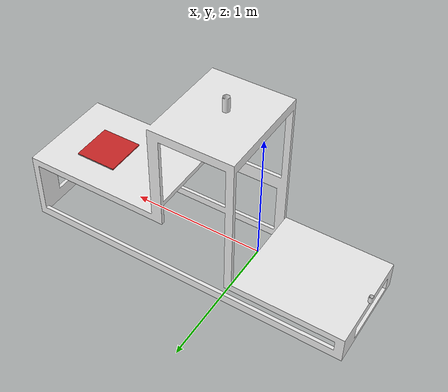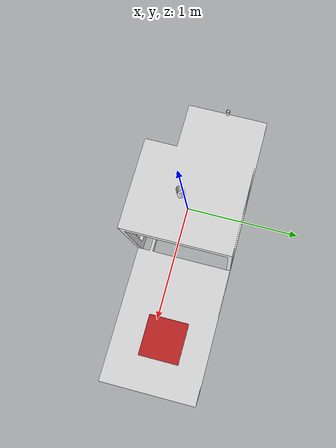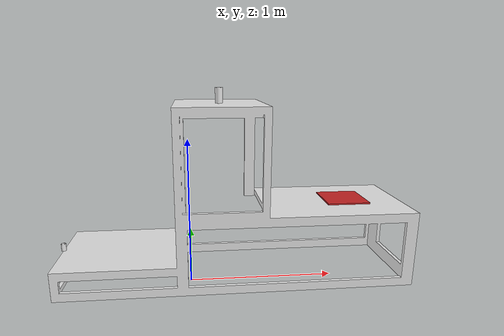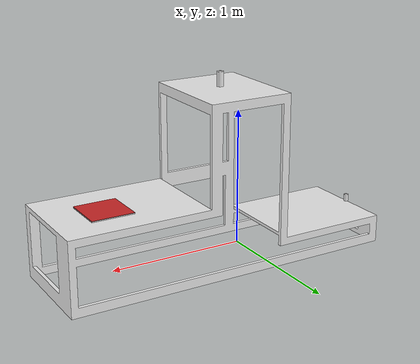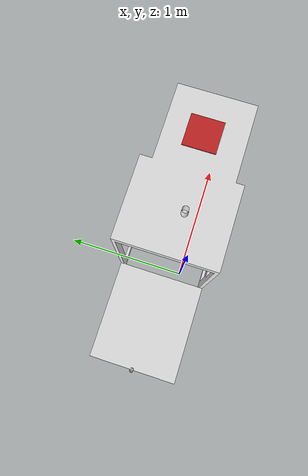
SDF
<?xml version='1.0'?>
<sdf version='1.7'>
  <model name='smart_reefs'>
    <link name='part_1'>
      <inertial>
        <pose>0 0 0 0 -0 0</pose>
        <mass>1e+12</mass>
        <inertia>
          <ixx>4.53417e+10</ixx>
          <ixy>0</ixy>
          <ixz>0</ixz>
          <iyy>5.66667e+10</iyy>
          <iyz>0</iyz>
          <izz>9.53417e+10</izz>
        </inertia>
      </inertial>
      <self_collide>0</self_collide>
      <enable_wind>0</enable_wind>
      <kinematic>0</kinematic>
      <pose>-0.087877 -0.216714 0 0 -0 0</pose>
      <gravity>1</gravity>
      <is_static>1</is_static>
      <frame name='part_1_frame'>
        <pose>0 0 0 0 -0 0</pose>
      </frame>
      <visual name='assembly_visual'>
        <pose>0 0 0 0 -0 0</pose>
        <geometry>
          <mesh>
            <uri>/home/eer/Documents/Software_2024/ROS2/models/smart_reefs/assembly_visual.stl</uri>
            <scale>2 2 2</scale>
          </mesh>
        </geometry>
        <material>
          <shader type='pixel'>
            <normal_map>__default__</normal_map>
          </shader>
          <script>
            <name>Gazebo/White</name>
            <uri>__default__</uri>
          </script>
          <ambient>1 1 1 1</ambient>
          <diffuse>1 1 1 1</diffuse>
          <specular>1 1 1 1</specular>
          <emissive>0 0 0 1</emissive>
        </material>
        <transparency>0</transparency>
        <cast_shadows>1</cast_shadows>
      </visual>
      <collision name='collision_3'>
        <laser_retro>0</laser_retro>
        <max_contacts>10</max_contacts>
        <pose>0.3 0.355 0.615 0 -0 0</pose>
        <geometry>
          <box>
            <size>0.6 0.71 1.195</size>
          </box>
        </geometry>
        <surface>
          <friction>
            <ode>
              <mu>1</mu>
              <mu2>1</mu2>
              <fdir1>0 0 0</fdir1>
              <slip1>0</slip1>
              <slip2>0</slip2>
            </ode>
            <torsional>
              <coefficient>1</coefficient>
              <patch_radius>0</patch_radius>
              <surface_radius>0</surface_radius>
              <use_patch_radius>1</use_patch_radius>
              <ode>
                <slip>0</slip>
              </ode>
            </torsional>
          </friction>
          <bounce>
            <restitution_coefficient>0</restitution_coefficient>
            <threshold>1e+06</threshold>
          </bounce>
          <contact>
            <collide_without_contact>0</collide_without_contact>
            <collide_without_contact_bitmask>1</collide_without_contact_bitmask>
            <collide_bitmask>1</collide_bitmask>
            <ode>
              <soft_cfm>0</soft_cfm>
              <soft_erp>0.2</soft_erp>
              <kp>1e+13</kp>
              <kd>1</kd>
              <max_vel>0.01</max_vel>
              <min_depth>0</min_depth>
            </ode>
            <bullet>
              <split_impulse>1</split_impulse>
              <split_impulse_penetration_threshold>-0.01</split_impulse_penetration_threshold>
              <soft_cfm>0</soft_cfm>
              <soft_erp>0.2</soft_erp>
              <kp>1e+13</kp>
              <kd>1</kd>
            </bullet>
          </contact>
        </surface>
      </collision>
      <collision name='collision_4'>
        <laser_retro>0</laser_retro>
        <max_contacts>10</max_contacts>
        <pose>1.1 0.355 0.3 0 -0 0</pose>
        <geometry>
          <box>
            <size>1 0.71 0.45</size>
          </box>
        </geometry>
        <surface>
          <friction>
            <ode>
              <mu>1</mu>
              <mu2>1</mu2>
              <fdir1>0 0 0</fdir1>
              <slip1>0</slip1>
              <slip2>0</slip2>
            </ode>
            <torsional>
              <coefficient>1</coefficient>
              <patch_radius>0</patch_radius>
              <surface_radius>0</surface_radius>
              <use_patch_radius>1</use_patch_radius>
              <ode>
                <slip>0</slip>
              </ode>
            </torsional>
          </friction>
          <bounce>
            <restitution_coefficient>0</restitution_coefficient>
            <threshold>1e+06</threshold>
          </bounce>
          <contact>
            <collide_without_contact>0</collide_without_contact>
            <collide_without_contact_bitmask>1</collide_without_contact_bitmask>
            <collide_bitmask>1</collide_bitmask>
            <ode>
              <soft_cfm>0</soft_cfm>
              <soft_erp>0.2</soft_erp>
              <kp>1e+13</kp>
              <kd>1</kd>
              <max_vel>0.01</max_vel>
              <min_depth>0</min_depth>
            </ode>
            <bullet>
              <split_impulse>1</split_impulse>
              <split_impulse_penetration_threshold>-0.01</split_impulse_penetration_threshold>
              <soft_cfm>0</soft_cfm>
              <soft_erp>0.2</soft_erp>
              <kp>1e+13</kp>
              <kd>1</kd>
            </bullet>
          </contact>
        </surface>
      </collision>
      <collision name='collision_2'>
        <laser_retro>0</laser_retro>
        <max_contacts>10</max_contacts>
        <pose>-0.4 0.355 0.1 0 -0 0</pose>
        <geometry>
          <box>
            <size>0.8 0.71 0.2</size>
          </box>
        </geometry>
        <surface>
          <friction>
            <ode>
              <mu>1</mu>
              <mu2>1</mu2>
              <fdir1>0 0 0</fdir1>
              <slip1>0</slip1>
              <slip2>0</slip2>
            </ode>
            <torsional>
              <coefficient>1</coefficient>
              <patch_radius>0</patch_radius>
              <surface_radius>0</surface_radius>
              <use_patch_radius>1</use_patch_radius>
              <ode>
                <slip>0</slip>
              </ode>
            </torsional>
          </friction>
          <bounce>
            <restitution_coefficient>0</restitution_coefficient>
            <threshold>1e+06</threshold>
          </bounce>
          <contact>
            <collide_without_contact>0</collide_without_contact>
            <collide_without_contact_bitmask>1</collide_without_contact_bitmask>
            <collide_bitmask>1</collide_bitmask>
            <ode>
              <soft_cfm>0</soft_cfm>
              <soft_erp>0.2</soft_erp>
              <kp>1e+13</kp>
              <kd>1</kd>
              <max_vel>0.01</max_vel>
              <min_depth>0</min_depth>
            </ode>
            <bullet>
              <split_impulse>1</split_impulse>
              <split_impulse_penetration_threshold>-0.01</split_impulse_penetration_threshold>
              <soft_cfm>0</soft_cfm>
              <soft_erp>0.2</soft_erp>
              <kp>1e+13</kp>
              <kd>1</kd>
            </bullet>
          </contact>
        </surface>
      </collision>
    </link>
    <link name='link_0'>
      <inertial>
        <mass>1</mass>
        <inertia>
          <ixx>0.166667</ixx>
          <ixy>0</ixy>
          <ixz>0</ixz>
          <iyy>0.166667</iyy>
          <iyz>0</iyz>
          <izz>0.166667</izz>
        </inertia>
        <pose>0 0 0 0 -0 0</pose>
      </inertial>
      <pose>1.11834 0.158057 0.524411 0 -0 0</pose>
      <gravity>1</gravity>
      <self_collide>0</self_collide>
      <kinematic>0</kinematic>
      <enable_wind>0</enable_wind>
      <visual name='visual'>
        <pose>0 0 0 0 -0 0</pose>
        <geometry>
          <box>
            <size>0.3 0.3 0.01</size>
          </box>
        </geometry>
        <material>
          <lighting>1</lighting>
          <script>
            <uri>file://media/materials/scripts/gazebo.material</uri>
            <name>Gazebo/Red</name>
          </script>
          <shader type='pixel'>
            <normal_map>__default__</normal_map>
          </shader>
          <ambient>1 0 0 1</ambient>
          <diffuse>1 0 0 1</diffuse>
          <specular>0.1 0.1 0.1 1</specular>
          <emissive>0 0 0 1</emissive>
        </material>
        <transparency>0</transparency>
        <cast_shadows>1</cast_shadows>
      </visual>
    </link>
    <joint name='part_1_JOINT_0' type='fixed'>
      <parent>part_1</parent>
      <child>link_0</child>
      <pose>0 0 0 0 -0 0</pose>
      <physics>
        <ode>
          <limit>
            <cfm>0</cfm>
            <erp>0.2</erp>
          </limit>
          <suspension>
            <cfm>0</cfm>
            <erp>0.2</erp>
          </suspension>
        </ode>
      </physics>
    </joint>
    <static>1</static>
    <allow_auto_disable>1</allow_auto_disable>
  </model>
</sdf>
